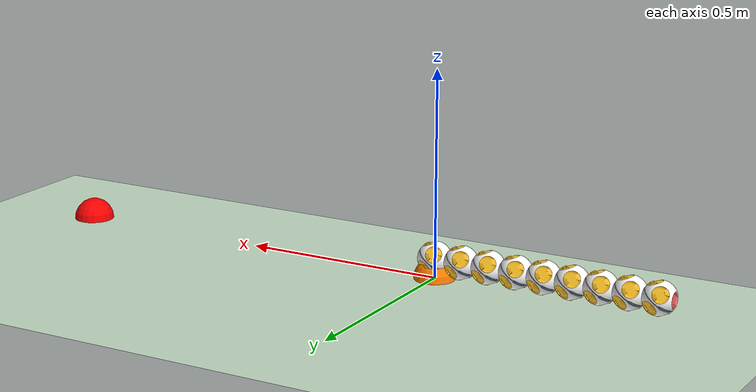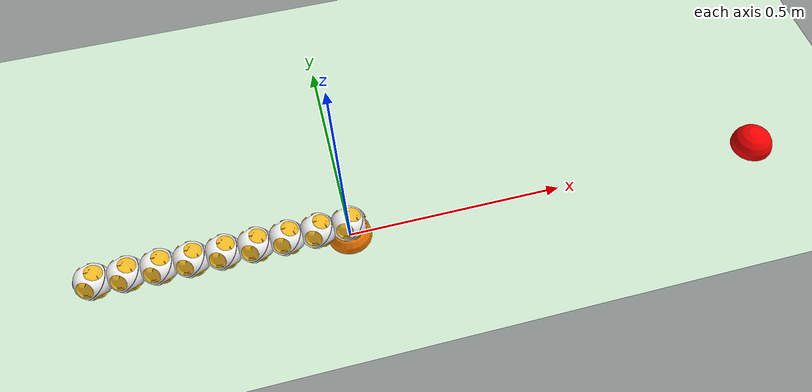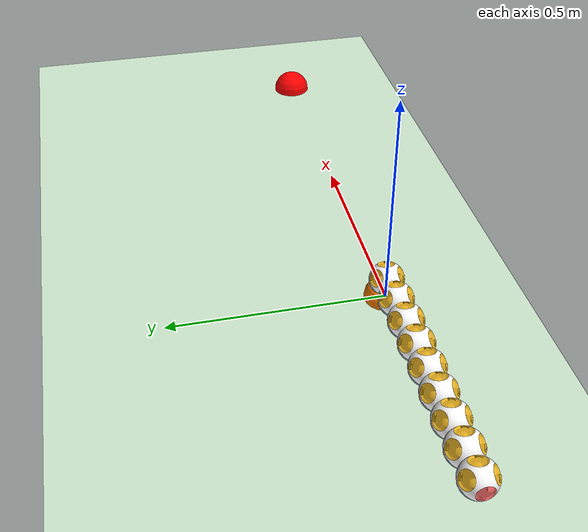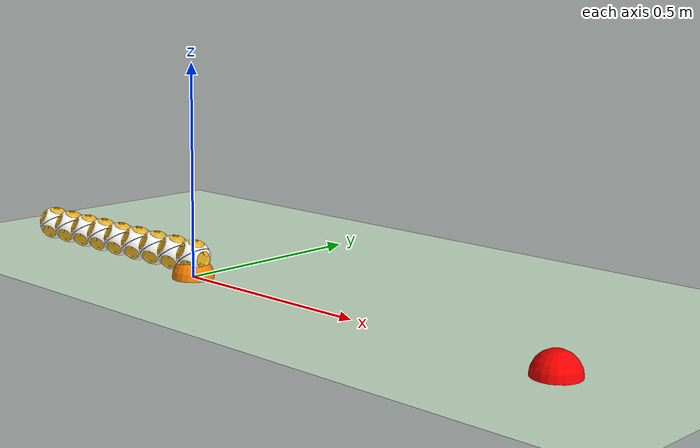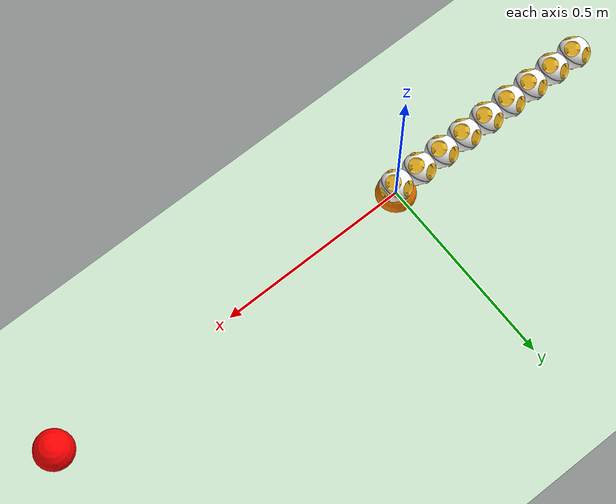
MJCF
<mujoco model="cellrobot(v1.0)">
    <compiler angle="radian" coordinate="local" meshdir="meshes" strippath="false" texturedir="textures"/>
    <option gravity="0 0 -9.81" integrator="RK4" timestep="0.001"/>

    <size nconmax="250" njmax="795" nstack="631875"/>

    <default>
        <geom contype="1"  conaffinity="1" condim="3" friction="1 0.005 0.0001" margin="0.001"   solref=".01 1" solimp=".99 .99 .01"/>
        <mesh scale="1 1 1"/>
        <joint armature="1" damping="15"  limited="true"/>
        <default class="detacher">
            <geom conaffinity="1"   margin="0.001" pos="0 0 0" rgba="0.93 0.71 0.13 1"
                  type="mesh"/>
        </default>
        <default class="cell">
            <geom conaffinity="1"   margin="0.001" solimp=".99 .99 .01" solref=".01 1"
                  type="mesh"/>
        </default>
    </default>
    <asset>
        <mesh file="cell_gear/shell_gear.STL" name="cell_half_gear"/>
        <mesh file="cell_gear/detacher1.STL" name="detacher1"/>
        <mesh file="cell_gear/detacher2.STL" name="detacher2"/>
        <mesh file="cell_gear/detacher3.STL" name="detacher3"/>
        <mesh file="cell_gear/detacher4.STL" name="detacher4"/>
        <mesh file="cell_gear/circle_gear.STL" name="circle_gear"/>
        <mesh file="cell_gear/led_gear.STL" name="led_gear"/>

        <mesh file="cell_motor/shell_motor.STL" name="cell_half_motor"/>
        <mesh file="cell_motor/detacher5.STL" name="detacher5"/>
        <mesh file="cell_motor/detacher6.STL" name="detacher6"/>
        <mesh file="cell_motor/detacher7.STL" name="detacher7"/>
        <mesh file="cell_motor/detacher8.STL" name="detacher8"/>
        <mesh file="cell_motor/circle_motor.STL" name="circle_motor"/>
        <mesh file="cell_motor/led_motor.STL" name="led_motor"/>

        <texture builtin="checker" height="100" name="floor_tex" rgb1=".2 .3 .4" rgb2=".1 .2 .3" type="2d" width="100"/>
        <texture builtin="checker" height="100" name="texplane" rgb1="0 0 0" rgb2="0.8 0.8 0.8" type="2d" width="100"/>
        <texture file="block.png" gridlayout=".U..LFRB.D.." gridsize="3 4" name="texture:object" type="cube"/>

        <material name="floor_mat" reflectance="0.5" shininess="0.8" specular="0.7" texrepeat="10 10"
                  texture="floor_tex"/>
        <material name="MatPlane" reflectance="0.5" shininess="1" specular="1" texrepeat="30 30" texture="texplane"/>
        <material name="material:object" reflectance="0" shininess="0" specular="1" texture="texture:object"/>
    </asset>

    <visual>
        <map fogend="3" fogstart="1.5"/>
        <quality shadowsize="20480"/>
    </visual>

    <contact>
        <exclude body1="cell1_1" body2="cell1_2"/>
        <exclude body1="cell2_1" body2="cell2_2"/>
        <exclude body1="cell3_1" body2="cell3_2"/>
        <exclude body1="cell4_1" body2="cell4_2"/>
        <exclude body1="cell5_1" body2="cell5_2"/>
        <exclude body1="cell6_1" body2="cell6_2"/>
        <exclude body1="cell7_1" body2="cell7_2"/>
        <exclude body1="cell8_1" body2="cell8_2"/>
        <exclude body1="cell0_1" body2="cell1_2"/>
        <exclude body1="cell1_1" body2="cell2_2"/>
        <exclude body1="cell2_1" body2="cell3_2"/>
        <exclude body1="cell3_1" body2="cell4_2"/>
        <exclude body1="cell4_1" body2="cell5_2"/>
        <exclude body1="cell5_1" body2="cell6_2"/>
        <exclude body1="cell6_1" body2="cell7_2"/>
        <exclude body1="cell7_1" body2="cell8_2"/>
    </contact>

    <worldbody>

        <light cutoff="100" diffuse="1 1 1" dir="-0 0 -1.3" directional="true" exponent="1" pos="0 0 1.3"
               specular=".1 .1 .1"/>

        <camera axisangle="2 2 -2 1" mode="trackcom" name="main1" pos="2 2 2" target="torso"/>

        <geom conaffinity="1" condim="3" material="MatPlane" name="floor" pos="0 0 0" rgba="0.8 0.9 0.8 1"
              size="15 15 15" type="plane"/>

        <site name="target1" pos="0 0 0" rgba="1 0.5 0 1" size="0.05 " type="sphere"/>
        <site name="target2" pos="1 0 0" rgba="1 0 0 1" size="0.05 " type="sphere"/>
        <body euler="0 -0.62 2.3562" name="torso" pos="0  0  0.05">
            <geom name="torso_geom" pos="0  0  0" size="0.02" type="sphere"/>
            <joint armature="0" damping="0" limited="false" margin="0.01" name="root" pos="0 0 0" type="free"/>
            <body name="cell0_1" pos="0 0 -0.001">
                <inertial
                        fullinertia="5.338593e-05 5.2989770000000003e-05 6.634227000000001e-05 4.3267e-07 1.1089e-06 2.2068200000000003e-06"
                        mass="0.09814" pos="-0.0004 -0.00079 0.009519999999999999"/>
                <geom class="cell" mesh="cell_half_gear" pos="0  0  0" rgba="1 1 1 1"/>
                <geom class="detacher" mesh="detacher1" rgba="1 0.42 0.42 1"/>
                <geom class="detacher" mesh="detacher2"/>
                <geom class="detacher" mesh="detacher3"/>
                <geom class="detacher" mesh="detacher4"/>
                <geom class="cell" mesh="circle_gear" pos="0  0  0" rgba="0 0 0 1"/>
                <geom class="cell" mesh="led_gear" pos="0  0  0" rgba="0.53 0.81 0.98 1"/>
                <body name="cell0_2" pos="0 0 0">
                    <site name="cell0" pos="0 0 0 " size="0.001 0.001 0.001"/>
                    <joint axis="0 0 1" limited="false" name="joint:cell0" pos="0 0 -0.001"/>
                    <inertial
                            fullinertia="5.363084e-05 5.412367e-05 5.157385e-05 2.1730000000000002e-07 4.8619e-07 4.5697000000000005e-07"
                            mass="0.1346" pos="0.00027 0.00011999999999999999 -0.01269"/>
                    <geom class="cell" mesh="cell_half_motor" pos="0  0  0" rgba="1 1 1 1"/>
                    <geom class="detacher" mesh="detacher5"/>
                    <geom class="detacher" mesh="detacher6"/>
                    <geom class="detacher" mesh="detacher7"/>
                    <geom class="detacher" mesh="detacher8"/>
                    <geom class="cell" mesh="circle_motor" pos="0  0  0" rgba="0 0 0 1"/>
                    <geom class="cell" mesh="led_motor" pos="0  0  0" rgba="0.53 0.81 0.98 1"/>
                </body>
                <body name="cell1_2" pos="0.04030095 0.04030095 0.0402944" quat="1.0 0.0 0.0 0.0">
                    <inertial
                            fullinertia="5.363084e-05 5.412367e-05 5.157385e-05 2.1730000000000002e-07 4.8619e-07 4.5697000000000005e-07"
                            mass="0.1346" pos="0.00027 0.00011999999999999999 -0.01269"/>
                    <geom class="cell" mesh="cell_half_motor" pos="0  0  0" rgba="1 1 1 1"/>
                    <geom class="detacher" mesh="detacher5"/>
                    <geom class="detacher" mesh="detacher6"/>
                    <geom class="detacher" mesh="detacher7"/>
                    <geom class="detacher" mesh="detacher8"/>
                    <geom class="cell" mesh="circle_motor" pos="0  0  0" rgba="0 0 0 1"/>
                    <geom class="cell" mesh="led_motor" pos="0  0  0" rgba="0.53 0.81 0.98 1"/>
                    <body name="cell1_1" pos="0 0 0">
                        <site name="cell1" pos="0 0 0 " size="0.001 0.001 0.001"/>
                        <joint limited="false" name="joint:cell1" pos="0 0 -0.001"/>
                        <inertial
                                fullinertia="5.338593e-05 5.2989770000000003e-05 6.634227000000001e-05 4.3267e-07 1.1089e-06 2.2068200000000003e-06"
                                mass="0.09814" pos="-0.0004 -0.00079 0.009519999999999999"/>
                        <geom class="cell" mesh="cell_half_gear" pos="0  0  0" rgba="1 1 1 1"/>
                        <geom class="detacher" mesh="detacher1" rgba="1 0.42 0.42 1"/>
                        <geom class="detacher" mesh="detacher2"/>
                        <geom class="detacher" mesh="detacher3"/>
                        <geom class="detacher" mesh="detacher4"/>
                        <geom class="cell" mesh="circle_gear" pos="0  0  0" rgba="0 0 0 1"/>
                        <geom class="cell" mesh="led_gear" pos="0  0  0" rgba="0.53 0.81 0.98 1"/>
                        <body name="cell2_2" pos="0.04030095 0.04030095 0.0402944" quat="1.0 0.0 0.0 0.0">
                            <inertial
                                    fullinertia="5.363084e-05 5.412367e-05 5.157385e-05 2.1730000000000002e-07 4.8619e-07 4.5697000000000005e-07"
                                    mass="0.1346" pos="0.00027 0.00011999999999999999 -0.01269"/>
                            <geom class="cell" mesh="cell_half_motor" pos="0  0  0" rgba="1 1 1 1"/>
                            <geom class="detacher" mesh="detacher5"/>
                            <geom class="detacher" mesh="detacher6"/>
                            <geom class="detacher" mesh="detacher7"/>
                            <geom class="detacher" mesh="detacher8"/>
                            <geom class="cell" mesh="circle_motor" pos="0  0  0" rgba="0 0 0 1"/>
                            <geom class="cell" mesh="led_motor" pos="0  0  0" rgba="0.53 0.81 0.98 1"/>
                            <body name="cell2_1" pos="0 0 0">
                                <site name="cell2" pos="0 0 0 " size="0.001 0.001 0.001"/>
                                <joint limited="false" name="joint:cell2" pos="0 0 -0.001"/>
                                <inertial
                                        fullinertia="5.338593e-05 5.2989770000000003e-05 6.634227000000001e-05 4.3267e-07 1.1089e-06 2.2068200000000003e-06"
                                        mass="0.09814" pos="-0.0004 -0.00079 0.009519999999999999"/>
                                <geom class="cell" mesh="cell_half_gear" pos="0  0  0" rgba="1 1 1 1"/>
                                <geom class="detacher" mesh="detacher1" rgba="1 0.42 0.42 1"/>
                                <geom class="detacher" mesh="detacher2"/>
                                <geom class="detacher" mesh="detacher3"/>
                                <geom class="detacher" mesh="detacher4"/>
                                <geom class="cell" mesh="circle_gear" pos="0  0  0" rgba="0 0 0 1"/>
                                <geom class="cell" mesh="led_gear" pos="0  0  0" rgba="0.53 0.81 0.98 1"/>
                                <body name="cell3_2" pos="0.04030095 0.04030095 0.0402944" quat="1.0 0.0 0.0 0.0">
                                    <inertial
                                            fullinertia="5.363084e-05 5.412367e-05 5.157385e-05 2.1730000000000002e-07 4.8619e-07 4.5697000000000005e-07"
                                            mass="0.1346" pos="0.00027 0.00011999999999999999 -0.01269"/>
                                    <geom class="cell" mesh="cell_half_motor" pos="0  0  0" rgba="1 1 1 1"/>
                                    <geom class="detacher" mesh="detacher5"/>
                                    <geom class="detacher" mesh="detacher6"/>
                                    <geom class="detacher" mesh="detacher7"/>
                                    <geom class="detacher" mesh="detacher8"/>
                                    <geom class="cell" mesh="circle_motor" pos="0  0  0" rgba="0 0 0 1"/>
                                    <geom class="cell" mesh="led_motor" pos="0  0  0" rgba="0.53 0.81 0.98 1"/>
                                    <body name="cell3_1" pos="0 0 0">
                                        <site name="cell3" pos="0 0 0 " size="0.001 0.001 0.001"/>
                                        <joint limited="false" name="joint:cell3" pos="0 0 -0.001"/>
                                        <inertial
                                                fullinertia="5.338593e-05 5.2989770000000003e-05 6.634227000000001e-05 4.3267e-07 1.1089e-06 2.2068200000000003e-06"
                                                mass="0.09814" pos="-0.0004 -0.00079 0.009519999999999999"/>
                                        <geom class="cell" mesh="cell_half_gear" pos="0  0  0" rgba="1 1 1 1"/>
                                        <geom class="detacher" mesh="detacher1" rgba="1 0.42 0.42 1"/>
                                        <geom class="detacher" mesh="detacher2"/>
                                        <geom class="detacher" mesh="detacher3"/>
                                        <geom class="detacher" mesh="detacher4"/>
                                        <geom class="cell" mesh="circle_gear" pos="0  0  0" rgba="0 0 0 1"/>
                                        <geom class="cell" mesh="led_gear" pos="0  0  0" rgba="0.53 0.81 0.98 1"/>
                                        <body name="cell4_2" pos="0.04030095 0.04030095 0.0402944"
                                              quat="1.0 0.0 0.0 0.0">
                                            <inertial
                                                    fullinertia="5.363084e-05 5.412367e-05 5.157385e-05 2.1730000000000002e-07 4.8619e-07 4.5697000000000005e-07"
                                                    mass="0.1346" pos="0.00027 0.00011999999999999999 -0.01269"/>
                                            <geom class="cell" mesh="cell_half_motor" pos="0  0  0" rgba="1 1 1 1"/>
                                            <geom class="detacher" mesh="detacher5"/>
                                            <geom class="detacher" mesh="detacher6"/>
                                            <geom class="detacher" mesh="detacher7"/>
                                            <geom class="detacher" mesh="detacher8"/>
                                            <geom class="cell" mesh="circle_motor" pos="0  0  0" rgba="0 0 0 1"/>
                                            <geom class="cell" mesh="led_motor" pos="0  0  0" rgba="0.53 0.81 0.98 1"/>
                                            <body name="cell4_1" pos="0 0 0">
                                                <site name="cell4" pos="0 0 0 " size="0.001 0.001 0.001"/>
                                                <joint limited="false" name="joint:cell4" pos="0 0 -0.001"/>
                                                <inertial
                                                        fullinertia="5.338593e-05 5.2989770000000003e-05 6.634227000000001e-05 4.3267e-07 1.1089e-06 2.2068200000000003e-06"
                                                        mass="0.09814" pos="-0.0004 -0.00079 0.009519999999999999"/>
                                                <geom class="cell" mesh="cell_half_gear" pos="0  0  0" rgba="1 1 1 1"/>
                                                <geom class="detacher" mesh="detacher1" rgba="1 0.42 0.42 1"/>
                                                <geom class="detacher" mesh="detacher2"/>
                                                <geom class="detacher" mesh="detacher3"/>
                                                <geom class="detacher" mesh="detacher4"/>
                                                <geom class="cell" mesh="circle_gear" pos="0  0  0" rgba="0 0 0 1"/>
                                                <geom class="cell" mesh="led_gear" pos="0  0  0"
                                                      rgba="0.53 0.81 0.98 1"/>
                                                <body name="cell5_2" pos="0.04030095 0.04030095 0.0402944"
                                                      quat="1.0 0.0 0.0 0.0">
                                                    <inertial
                                                            fullinertia="5.363084e-05 5.412367e-05 5.157385e-05 2.1730000000000002e-07 4.8619e-07 4.5697000000000005e-07"
                                                            mass="0.1346"
                                                            pos="0.00027 0.00011999999999999999 -0.01269"/>
                                                    <geom class="cell" mesh="cell_half_motor" pos="0  0  0"
                                                          rgba="1 1 1 1"/>
                                                    <geom class="detacher" mesh="detacher5"/>
                                                    <geom class="detacher" mesh="detacher6"/>
                                                    <geom class="detacher" mesh="detacher7"/>
                                                    <geom class="detacher" mesh="detacher8"/>
                                                    <geom class="cell" mesh="circle_motor" pos="0  0  0"
                                                          rgba="0 0 0 1"/>
                                                    <geom class="cell" mesh="led_motor" pos="0  0  0"
                                                          rgba="0.53 0.81 0.98 1"/>
                                                    <body name="cell5_1" pos="0 0 0">
                                                        <site name="cell5" pos="0 0 0 " size="0.001 0.001 0.001"/>
                                                        <joint limited="false" name="joint:cell5" pos="0 0 -0.001"/>
                                                        <inertial
                                                                fullinertia="5.338593e-05 5.2989770000000003e-05 6.634227000000001e-05 4.3267e-07 1.1089e-06 2.2068200000000003e-06"
                                                                mass="0.09814"
                                                                pos="-0.0004 -0.00079 0.009519999999999999"/>
                                                        <geom class="cell" mesh="cell_half_gear" pos="0  0  0"
                                                              rgba="1 1 1 1"/>
                                                        <geom class="detacher" mesh="detacher1" rgba="1 0.42 0.42 1"/>
                                                        <geom class="detacher" mesh="detacher2"/>
                                                        <geom class="detacher" mesh="detacher3"/>
                                                        <geom class="detacher" mesh="detacher4"/>
                                                        <geom class="cell" mesh="circle_gear" pos="0  0  0"
                                                              rgba="0 0 0 1"/>
                                                        <geom class="cell" mesh="led_gear" pos="0  0  0"
                                                              rgba="0.53 0.81 0.98 1"/>
                                                        <body name="cell6_2" pos="0.04030095 0.04030095 0.0402944"
                                                              quat="1.0 0.0 0.0 0.0">
                                                            <inertial
                                                                    fullinertia="5.363084e-05 5.412367e-05 5.157385e-05 2.1730000000000002e-07 4.8619e-07 4.5697000000000005e-07"
                                                                    mass="0.1346"
                                                                    pos="0.00027 0.00011999999999999999 -0.01269"/>
                                                            <geom class="cell" mesh="cell_half_motor" pos="0  0  0"
                                                                  rgba="1 1 1 1"/>
                                                            <geom class="detacher" mesh="detacher5"/>
                                                            <geom class="detacher" mesh="detacher6"/>
                                                            <geom class="detacher" mesh="detacher7"/>
                                                            <geom class="detacher" mesh="detacher8"/>
                                                            <geom class="cell" mesh="circle_motor" pos="0  0  0"
                                                                  rgba="0 0 0 1"/>
                                                            <geom class="cell" mesh="led_motor" pos="0  0  0"
                                                                  rgba="0.53 0.81 0.98 1"/>
                                                            <body name="cell6_1" pos="0 0 0">
                                                                <site name="cell6" pos="0 0 0 "
                                                                      size="0.001 0.001 0.001"/>
                                                                <joint limited="false" name="joint:cell6"
                                                                       pos="0 0 -0.001"/>
                                                                <inertial
                                                                        fullinertia="5.338593e-05 5.2989770000000003e-05 6.634227000000001e-05 4.3267e-07 1.1089e-06 2.2068200000000003e-06"
                                                                        mass="0.09814"
                                                                        pos="-0.0004 -0.00079 0.009519999999999999"/>
                                                                <geom class="cell" mesh="cell_half_gear" pos="0  0  0"
                                                                      rgba="1 1 1 1"/>
                                                                <geom class="detacher" mesh="detacher1"
                                                                      rgba="1 0.42 0.42 1"/>
                                                                <geom class="detacher" mesh="detacher2"/>
                                                                <geom class="detacher" mesh="detacher3"/>
                                                                <geom class="detacher" mesh="detacher4"/>
                                                                <geom class="cell" mesh="circle_gear" pos="0  0  0"
                                                                      rgba="0 0 0 1"/>
                                                                <geom class="cell" mesh="led_gear" pos="0  0  0"
                                                                      rgba="0.53 0.81 0.98 1"/>
                                                                <body name="cell7_2"
                                                                      pos="0.04030095 0.04030095 0.0402944"
                                                                      quat="1.0 0.0 0.0 0.0">
                                                                    <inertial
                                                                            fullinertia="5.363084e-05 5.412367e-05 5.157385e-05 2.1730000000000002e-07 4.8619e-07 4.5697000000000005e-07"
                                                                            mass="0.1346"
                                                                            pos="0.00027 0.00011999999999999999 -0.01269"/>
                                                                    <geom class="cell" mesh="cell_half_motor"
                                                                          pos="0  0  0" rgba="1 1 1 1"/>
                                                                    <geom class="detacher" mesh="detacher5"/>
                                                                    <geom class="detacher" mesh="detacher6"/>
                                                                    <geom class="detacher" mesh="detacher7"/>
                                                                    <geom class="detacher" mesh="detacher8"/>
                                                                    <geom class="cell" mesh="circle_motor" pos="0  0  0"
                                                                          rgba="0 0 0 1"/>
                                                                    <geom class="cell" mesh="led_motor" pos="0  0  0"
                                                                          rgba="0.53 0.81 0.98 1"/>
                                                                    <body name="cell7_1" pos="0 0 0">
                                                                        <site name="cell7" pos="0 0 0 "
                                                                              size="0.001 0.001 0.001"/>
                                                                        <joint limited="false" name="joint:cell7"
                                                                               pos="0 0 -0.001"/>
                                                                        <inertial
                                                                                fullinertia="5.338593e-05 5.2989770000000003e-05 6.634227000000001e-05 4.3267e-07 1.1089e-06 2.2068200000000003e-06"
                                                                                mass="0.09814"
                                                                                pos="-0.0004 -0.00079 0.009519999999999999"/>
                                                                        <geom class="cell" mesh="cell_half_gear"
                                                                              pos="0  0  0" rgba="1 1 1 1"/>
                                                                        <geom class="detacher" mesh="detacher1"
                                                                              rgba="1 0.42 0.42 1"/>
                                                                        <geom class="detacher" mesh="detacher2"/>
                                                                        <geom class="detacher" mesh="detacher3"/>
                                                                        <geom class="detacher" mesh="detacher4"/>
                                                                        <geom class="cell" mesh="circle_gear"
                                                                              pos="0  0  0" rgba="0 0 0 1"/>
                                                                        <geom class="cell" mesh="led_gear" pos="0  0  0"
                                                                              rgba="0.53 0.81 0.98 1"/>
                                                                        <body name="cell8_2"
                                                                              pos="0.04030095 0.04030095 0.0402944"
                                                                              quat="1.0 0.0 0.0 0.0">
                                                                            <inertial
                                                                                    fullinertia="5.363084e-05 5.412367e-05 5.157385e-05 2.1730000000000002e-07 4.8619e-07 4.5697000000000005e-07"
                                                                                    mass="0.1346"
                                                                                    pos="0.00027 0.00011999999999999999 -0.01269"/>
                                                                            <geom class="cell" mesh="cell_half_motor"
                                                                                  pos="0  0  0" rgba="1 1 1 1"/>
                                                                            <geom class="detacher" mesh="detacher5"/>
                                                                            <geom class="detacher" mesh="detacher6"/>
                                                                            <geom class="detacher" mesh="detacher7"/>
                                                                            <geom class="detacher" mesh="detacher8"/>
                                                                            <geom class="cell" mesh="circle_motor"
                                                                                  pos="0  0  0" rgba="0 0 0 1"/>
                                                                            <geom class="cell" mesh="led_motor"
                                                                                  pos="0  0  0"
                                                                                  rgba="0.53 0.81 0.98 1"/>
                                                                            <body name="cell8_1" pos="0 0 0">
                                                                                <site name="cell8" pos="0 0 0 "
                                                                                      size="0.001 0.001 0.001"/>
                                                                                <joint limited="false"
                                                                                       name="joint:cell8"
                                                                                       pos="0 0 -0.001"/>
                                                                                <inertial
                                                                                        fullinertia="5.338593e-05 5.2989770000000003e-05 6.634227000000001e-05 4.3267e-07 1.1089e-06 2.2068200000000003e-06"
                                                                                        mass="0.09814"
                                                                                        pos="-0.0004 -0.00079 0.009519999999999999"/>
                                                                                <geom class="cell" mesh="cell_half_gear"
                                                                                      pos="0  0  0" rgba="1 1 1 1"/>
                                                                                <geom class="detacher" mesh="detacher1"
                                                                                      rgba="1 0.42 0.42 1"/>
                                                                                <geom class="detacher"
                                                                                      mesh="detacher2"/>
                                                                                <geom class="detacher"
                                                                                      mesh="detacher3"/>
                                                                                <geom class="detacher"
                                                                                      mesh="detacher4"/>
                                                                                <geom class="cell" mesh="circle_gear"
                                                                                      pos="0  0  0" rgba="0 0 0 1"/>
                                                                                <geom class="cell" mesh="led_gear"
                                                                                      pos="0  0  0"
                                                                                      rgba="0.53 0.81 0.98 1"/>
                                                                            </body>
                                                                        </body>
                                                                    </body>
                                                                </body>
                                                            </body>
                                                        </body>
                                                    </body>
                                                </body>
                                            </body>
                                        </body>
                                    </body>
                                </body>
                            </body>
                        </body>
                    </body>
                </body>
            </body>
        </body>
    </worldbody>

    <actuator>

        <motor ctrllimited="true" ctrlrange="-1.0 1.0" gear="50" joint="joint:cell0"/>
        <motor ctrllimited="true" ctrlrange="-1.0 1.0" gear="50" joint="joint:cell1"/>
        <motor ctrllimited="true" ctrlrange="-1.0 1.0" gear="50" joint="joint:cell2"/>
        <motor ctrllimited="true" ctrlrange="-1.0 1.0" gear="50" joint="joint:cell3"/>
        <motor ctrllimited="true" ctrlrange="-1.0 1.0" gear="50" joint="joint:cell4"/>
        <motor ctrllimited="true" ctrlrange="-1.0 1.0" gear="50" joint="joint:cell5"/>
        <motor ctrllimited="true" ctrlrange="-1.0 1.0" gear="50" joint="joint:cell6"/>
        <motor ctrllimited="true" ctrlrange="-1.0 1.0" gear="50" joint="joint:cell7"/>
        <motor ctrllimited="true" ctrlrange="-1.0 1.0" gear="50" joint="joint:cell8"/>
    </actuator>
    <sensor>

        <torque name="cell0_toq" site="cell0"/>
        <torque name="cell1_toq" site="cell1"/>
        <torque name="cell2_toq" site="cell2"/>
        <torque name="cell3_toq" site="cell3"/>
        <torque name="cell4_toq" site="cell4"/>
        <torque name="cell5_toq" site="cell5"/>
        <torque name="cell6_toq" site="cell6"/>
        <torque name="cell7_toq" site="cell7"/>
        <torque name="cell8_toq" site="cell8"/>
    </sensor>
</mujoco>
